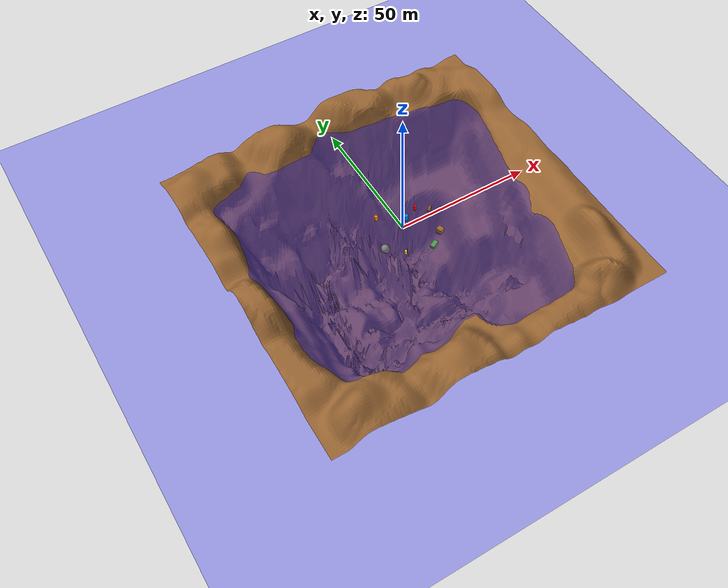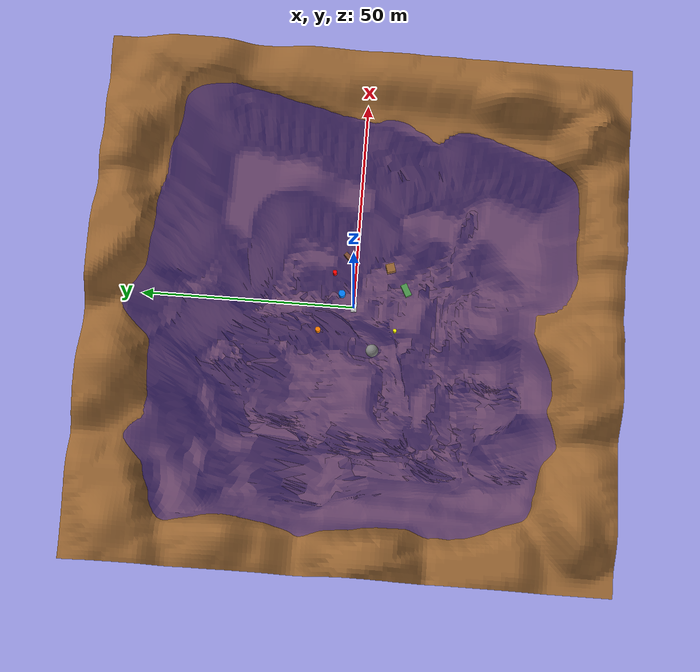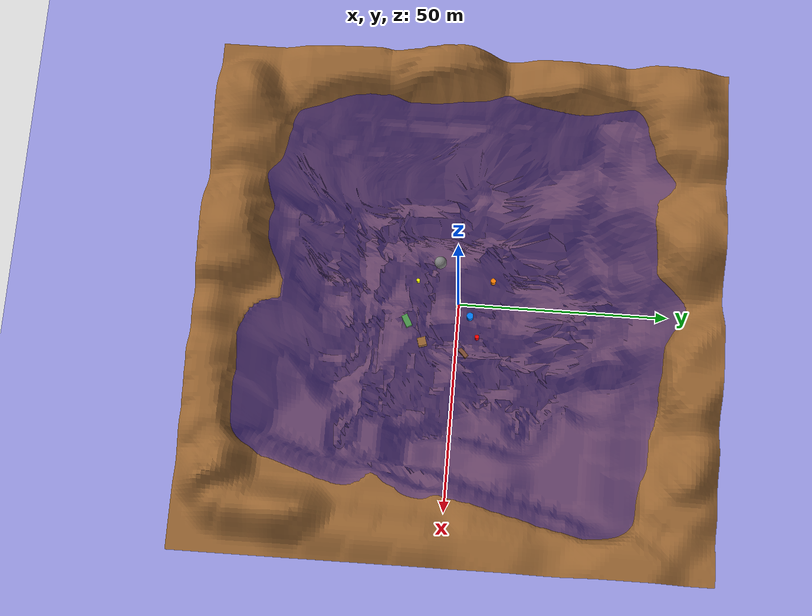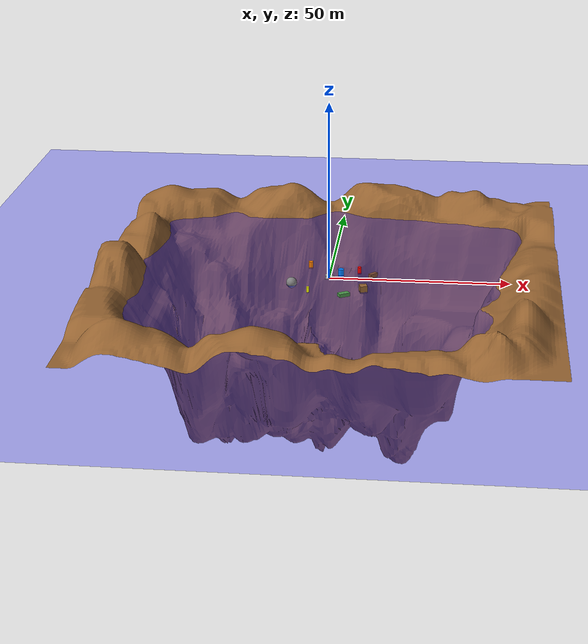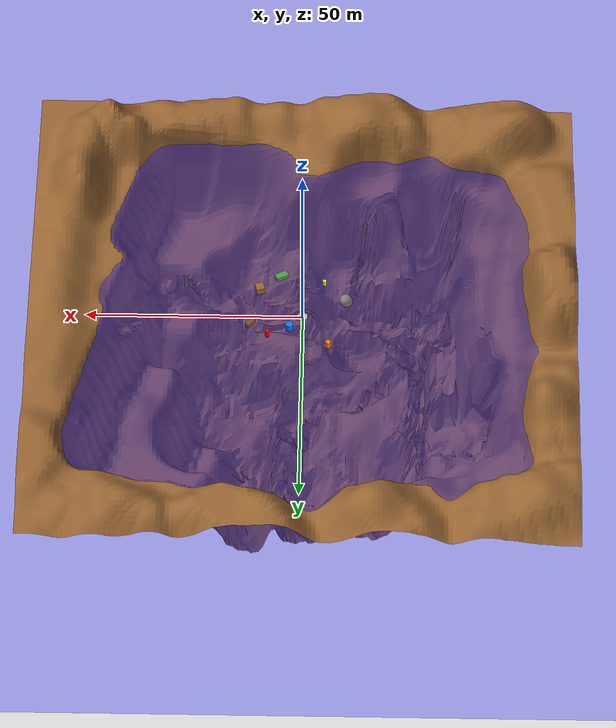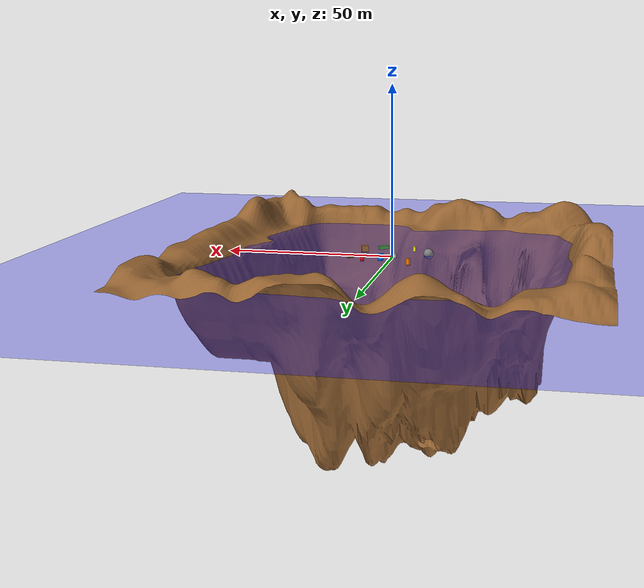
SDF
<?xml version="1.0" ?>
<sdf version="1.6">
  <world name="boat_world">

    <!-- Physics -->
    <physics name="1ms" type="ode">
      <max_step_size>0.001</max_step_size>
      <real_time_factor>1.0</real_time_factor>
    </physics>

    <!-- Core Gazebo systems -->
    <plugin filename="ignition-gazebo-physics-system"
            name="ignition::gazebo::systems::Physics"/>
    <plugin filename="ignition-gazebo-user-commands-system"
            name="ignition::gazebo::systems::UserCommands"/>
    <plugin filename="ignition-gazebo-scene-broadcaster-system"
            name="ignition::gazebo::systems::SceneBroadcaster"/>

    <!-- Buoyancy plugin -->
    <plugin filename="ignition-gazebo-buoyancy-system"
            name="ignition::gazebo::systems::Buoyancy">
      <graded_buoyancy>
        <default_density>1000</default_density>
       <density_change>
          <above_depth>0</above_depth>
          <density>1</density>
          .
        </density_change>
      </graded_buoyancy>

      <!-- ENABLE BOAT -->
      <enable>boat_1::hull_1</enable>

    </plugin>

    <plugin filename="ignition-gazebo-sensors-system"
        name="ignition::gazebo::systems::Sensors">
        <render_engine>ogre2</render_engine>
    </plugin>

    <!-- Sun Light -->
    <light type="directional" name="sun">
      <cast_shadows>true</cast_shadows>
      <pose>0 0 10 0 0 0</pose>
      <diffuse>1 1 1 1</diffuse>
      <specular>0.5 0.5 0.5 1</specular>
      <direction>-0.5 0.1 -0.9</direction>
    </light>

    <!-- Water plane at z=0 -->
    <model name="water_plane">
      <static>true</static>
      <link name="link">
        <visual name="water_plane">
          <geometry>
            <plane>
              <size>200 200</size>
              <normal>0 0 1</normal>
            </plane>
          </geometry>
          <material>
            <ambient>0 0 1 0.5</ambient>
            <diffuse>0 0 1 0.5</diffuse>
          </material>
        </visual>
      </link>
    </model>

    <include>
        <uri>model://envarment</uri>
        <name>my_model</name>
        <pose>0 0 0 0 0 0</pose>
    </include>

      <include>
          <uri>model://boat_1</uri>
          <pose>0 0 0 0 0 0</pose> <!-- position it 2 m on X, same depth as other boat -->
      </include>

    <!-- FLOATING OBSTACLES FOR LIDAR DETECTION  -->

    <!-- Obstacle 1: Floating Buoy -->
    <model name="obstacle_buoy_1">
      <static>true</static>
      <pose>8 5 0.5 0 0 0</pose>
      <link name="link">
        <collision name="collision">
          <geometry><cylinder><radius>0.5</radius><length>2.0</length></cylinder></geometry>
        </collision>
        <visual name="visual">
          <geometry><cylinder><radius>0.5</radius><length>2.0</length></cylinder></geometry>
          <material><ambient>1 0 0 1</ambient><diffuse>1 0 0 1</diffuse></material>
        </visual>
      </link>
    </model>

    <!-- Obstacle 2: Floating Buoy -->
    <model name="obstacle_buoy_2">
      <static>true</static>
      <pose>-6 8 0.5 0 0 0</pose>
      <link name="link">
        <collision name="collision">
          <geometry><cylinder><radius>0.6</radius><length>2.0</length></cylinder></geometry>
        </collision>
        <visual name="visual">
          <geometry><cylinder><radius>0.6</radius><length>2.0</length></cylinder></geometry>
          <material><ambient>1 0.5 0 1</ambient><diffuse>1 0.5 0 1</diffuse></material>
        </visual>
      </link>
    </model>

    <!-- Obstacle 3: Floating Box/Crate -->
    <model name="obstacle_crate_1">
      <static>true</static>
      <pose>10 -8 0.5 0 0 0.3</pose>
      <link name="link">
        <collision name="collision">
          <geometry><box><size>2 2 2</size></box></geometry>
        </collision>
        <visual name="visual">
          <geometry><box><size>2 2 2</size></box></geometry>
          <material><ambient>0.6 0.4 0.2 1</ambient><diffuse>0.6 0.4 0.2 1</diffuse></material>
        </visual>
      </link>
    </model>

    <!-- Obstacle 4: Small Island/Rock -->
    <model name="obstacle_rock_1">
      <static>true</static>
      <pose>-10 -5 0.3 0 0 0</pose>
      <link name="link">
        <collision name="collision">
          <geometry><sphere><radius>1.5</radius></sphere></geometry>
        </collision>
        <visual name="visual">
          <geometry><sphere><radius>1.5</radius></sphere></geometry>
          <material><ambient>0.4 0.4 0.4 1</ambient><diffuse>0.5 0.5 0.5 1</diffuse></material>
        </visual>
      </link>
    </model>

    <!-- Obstacle 5: Floating Platform -->
    <model name="obstacle_platform_1">
      <static>true</static>
      <pose>5 -12 0.3 0 0 0.5</pose>
      <link name="link">
        <collision name="collision">
          <geometry><box><size>3 1.5 1</size></box></geometry>
        </collision>
        <visual name="visual">
          <geometry><box><size>3 1.5 1</size></box></geometry>
          <material><ambient>0.3 0.5 0.3 1</ambient><diffuse>0.3 0.6 0.3 1</diffuse></material>
        </visual>
      </link>
    </model>

    <!-- Obstacle 6: Another Buoy -->
    <model name="obstacle_buoy_3">
      <static>true</static>
      <pose>-5 -10 0.5 0 0 0</pose>
      <link name="link">
        <collision name="collision">
          <geometry><cylinder><radius>0.4</radius><length>1.5</length></cylinder></geometry>
        </collision>
        <visual name="visual">
          <geometry><cylinder><radius>0.4</radius><length>1.5</length></cylinder></geometry>
          <material><ambient>1 1 0 1</ambient><diffuse>1 1 0 1</diffuse></material>
        </visual>
      </link>
    </model>

    <!-- Obstacle 7: Large floating debris -->
    <model name="obstacle_debris_1">
      <static>true</static>
      <pose>12 2 0.4 0 0 0.8</pose>
      <link name="link">
        <collision name="collision">
          <geometry><box><size>2.5 1 1.2</size></box></geometry>
        </collision>
        <visual name="visual">
          <geometry><box><size>2.5 1 1.2</size></box></geometry>
          <material><ambient>0.5 0.3 0.2 1</ambient><diffuse>0.5 0.3 0.2 1</diffuse></material>
        </visual>
      </link>0
    </model>

    <!-- Obstacle 8: Central obstacle -->
    <model name="obstacle_center">
      <static>true</static>
      <pose>3 3 0.5 0 0 0</pose>
      <link name="link">
        <collision name="collision">
          <geometry><cylinder><radius>0.8</radius><length>2.0</length></cylinder></geometry>
        </collision>
        <visual name="visual">
          <geometry><cylinder><radius>0.8</radius><length>2.0</length></cylinder></geometry>
          <material><ambient>0 0.5 1 1</ambient><diffuse>0 0.5 1 1</diffuse></material>
        </visual>
      </link>
    </model>

  </world>
</sdf>

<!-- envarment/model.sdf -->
<sdf version="1.6">
  <model name="my_fixed_model">
    <static>true</static>
    <!-- default pose (override when including in world) -->
    <pose>0 0 0 0 0 0</pose>

    <link name="link">
      <visual name="visual">
        <geometry>
          <mesh>
            <uri>model://envarment/meshes/la.stl</uri>
            <scale>1 1 1</scale>
          </mesh>
        </geometry>

          <material>
            <ambient>0.6 0.4 0.2 1</ambient>
            <diffuse>0.6 0.4 0.2 1</diffuse>
            <specular>0.1 0.1 0.1 1</specular>
          </material>

      </visual>

      <collision name="collision">
        <geometry>
          <mesh>
            <uri>model://envarment/meshes/la.stl</uri>
            <scale>1 1 1</scale>
          </mesh>
        </geometry>
      </collision>
    </link>
  </model>
</sdf>

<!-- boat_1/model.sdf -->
<sdf version="1.9">
  <model name="boat_1">
    <static>false</static>
    <self_collide>false</self_collide>

    <!-- Publish odometry (world pose of the boat) -->
    <plugin filename="ignition-gazebo-odometry-publisher-system"
            name="ignition::gazebo::systems::OdometryPublisher">
      <odom_frame>world</odom_frame>
      <robot_base_frame>boat_1/hull_1</robot_base_frame>
      <odom_topic>/boat_1/odom</odom_topic>
      <odom_publish_frequency>50</odom_publish_frequency>
    </plugin>

    <link name="hull_1">
      <inertial>
        <pose>0.055 0 -0.5 0 0 0</pose>
        <mass>2170</mass>
        <inertia>
          <ixx>5000</ixx> <iyy>5000</iyy> <izz>5000</izz>
          <ixy>0</ixy><ixz>0</ixz><iyz>0</iyz>
        </inertia>
      </inertial>

      <velocity_decay>
          <linear>0.3</linear>
          <angular>100.0</angular>
      </velocity_decay>

      <collision name="hull_collision">
        <geometry><box><size>2 1.33 1.7</size></box></geometry>
      </collision>

      <collision name="stabilizer_left">
        <pose>0 1.0 0 0 0 0</pose> <geometry><box><size>1.0 0.1 0.1</size></box></geometry>
      </collision>

      <collision name="stabilizer_right">
        <pose>0 -1.0 0 0 0 0</pose> <geometry><box><size>1.0 0.1 0.1</size></box></geometry>
      </collision>

      <visual name="hull_visual">
        <geometry><mesh><uri>model://boat_1/meshes/boat.stl</uri></mesh></geometry>
      </visual>

      <link_property>
        <center_of_volume>0.8 0 0.4</center_of_volume>
        <volume>3.5</volume>
      </link_property>
    </link>

    <link name="propeller_left">
      <pose>-1.1 -0.5 -0.24 0 0 0</pose>
      <gravity>false</gravity>
      <inertial>
        <mass>50.0</mass>
        <inertia><ixx>0.1</ixx><iyy>0.1</iyy><izz>0.1</izz></inertia>
      </inertial>
      <visual name="prop_left_visual">
        <geometry><mesh><uri>model://boat_1/meshes/prop.stl</uri></mesh></geometry>
      </visual>
    </link>

    <link name="propeller_right">
      <pose>-1.1 0.5 -0.24 0 0 0</pose>
      <gravity>false</gravity>
      <inertial>
        <mass>50.0</mass>
        <inertia><ixx>0.1</ixx><iyy>0.1</iyy><izz>0.1</izz></inertia>
      </inertial>
      <visual name="prop_right_visual">
        <geometry><mesh><uri>model://boat_1/meshes/prop.stl</uri></mesh></geometry>
      </visual>
    </link>

    <joint name="prop_joint_left" type="revolute">
      <parent>hull_1</parent>
      <child>propeller_left</child>
      <axis>
        <xyz>1 0 0</xyz>
        <limit><lower>-1e16</lower><upper>1e16</upper></limit>
      </axis>
    </joint>

    <joint name="prop_joint_right" type="revolute">
      <parent>hull_1</parent>
      <child>propeller_right</child>
      <axis>
        <xyz>-1 0 0</xyz>
        <limit><lower>-1e16</lower><upper>1e16</upper></limit>
      </axis>
    </joint>

    <plugin filename="libignition-gazebo-thruster-system.so"
            name="ignition::gazebo::systems::Thruster">
      <joint_name>prop_joint_left</joint_name>
      <namespace>boat_1</namespace>
      <topic>left_thrust_cmd</topic>
      <thrust_coefficient>0.1</thrust_coefficient>
      <fluid_density>1000</fluid_density>
      <propeller_diameter>0.2</propeller_diameter>
      <velocity_control>true</velocity_control>
      <p_gain>0.1</p_gain>
    </plugin>

    <plugin filename="libignition-gazebo-thruster-system.so"
            name="ignition::gazebo::systems::Thruster">
      <joint_name>prop_joint_right</joint_name>
      <namespace>boat_1</namespace>
      <topic>right_thrust_cmd</topic>
      <thrust_coefficient>0.1</thrust_coefficient>
      <fluid_density>1000</fluid_density>
      <propeller_diameter>0.2</propeller_diameter>
      <velocity_control>true</velocity_control>
      <p_gain>0.1</p_gain>
    </plugin>

    <plugin filename="libignition-gazebo-hydrodynamics-system.so"
            name="ignition::gazebo::systems::Hydrodynamics">
      <link_name>hull_1</link_name>
      <linear_drag_coefficients>1.0 50 50</linear_drag_coefficients>
      <angular_drag_coefficients>5000 5000 5000</angular_drag_coefficients>
    </plugin>

          <link name="lidar_link">
            <pose>0.8 0 1.0 0 0 0</pose> <inertial>
              <mass>0.1</mass>
              <inertia><ixx>0.001</ixx><iyy>0.001</iyy><izz>0.001</izz></inertia>
            </inertial>

            <visual name="lidar_visual">
              <geometry>
                <cylinder><radius>0.05</radius><length>0.1</length></cylinder>
              </geometry>
              <material><diffuse>0 0 0 1</diffuse></material>
            </visual>

            <sensor name="front_lidar" type="gpu_lidar">
              <pose>0 0 0 0 0 0</pose>
              <topic>scan</topic>
              <update_rate>10</update_rate>
              <ray>
                <scan>
                  <horizontal>
                    <samples>720</samples> <resolution>1</resolution>
                    <min_angle>-3.14159</min_angle> <max_angle>3.14159</max_angle>
                  </horizontal>
                  <vertical>
                    <samples>1</samples> <resolution>1</resolution>
                    <min_angle>0.0</min_angle>
                    <max_angle>0.0</max_angle>
                  </vertical>
                </scan>
                <range>
                  <min>0.5</min> <max>50.0</max>
                </range>
              </ray>
              <visualize>false</visualize>
            </sensor>
          </link>

          <joint name="lidar_joint" type="fixed">
            <parent>hull_1</parent>
            <child>lidar_link</child>
          </joint>

  </model>
</sdf>
